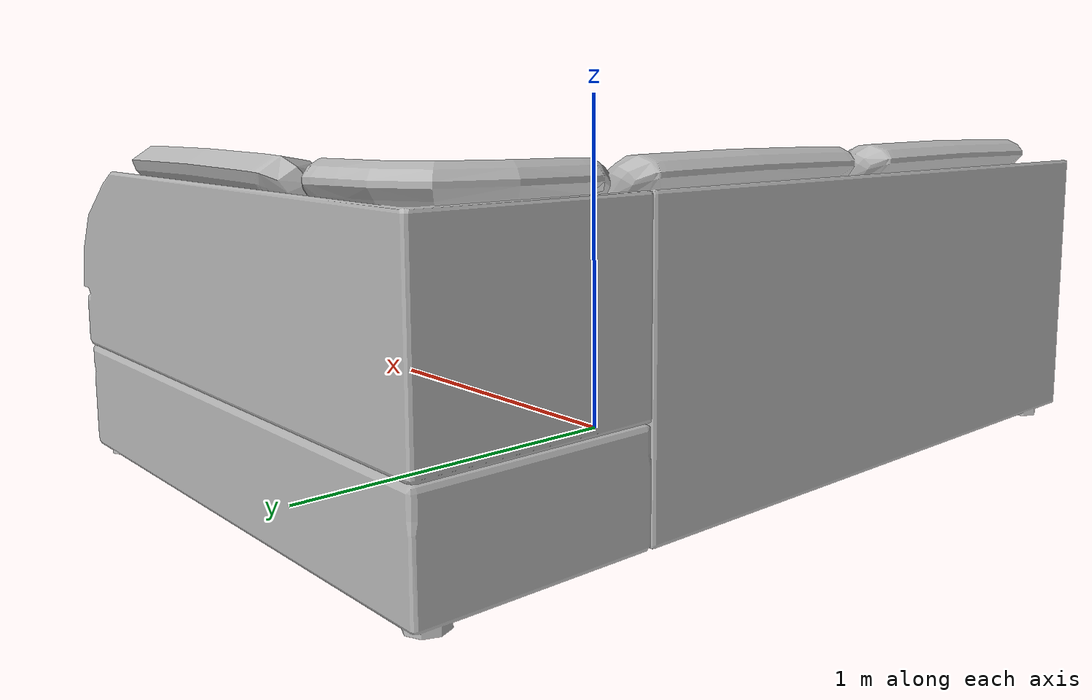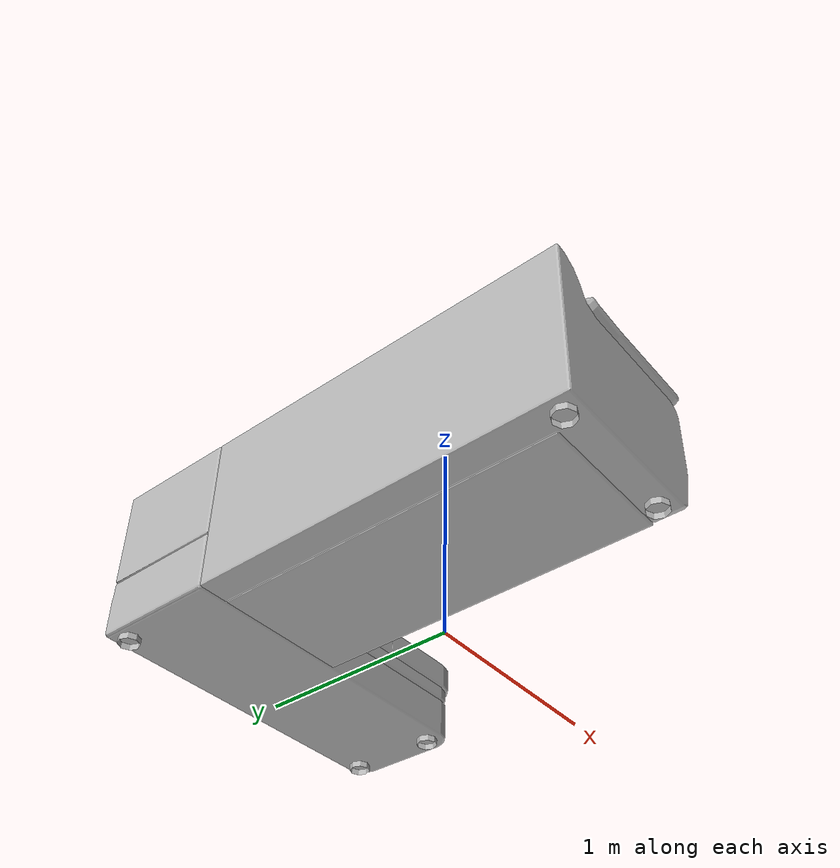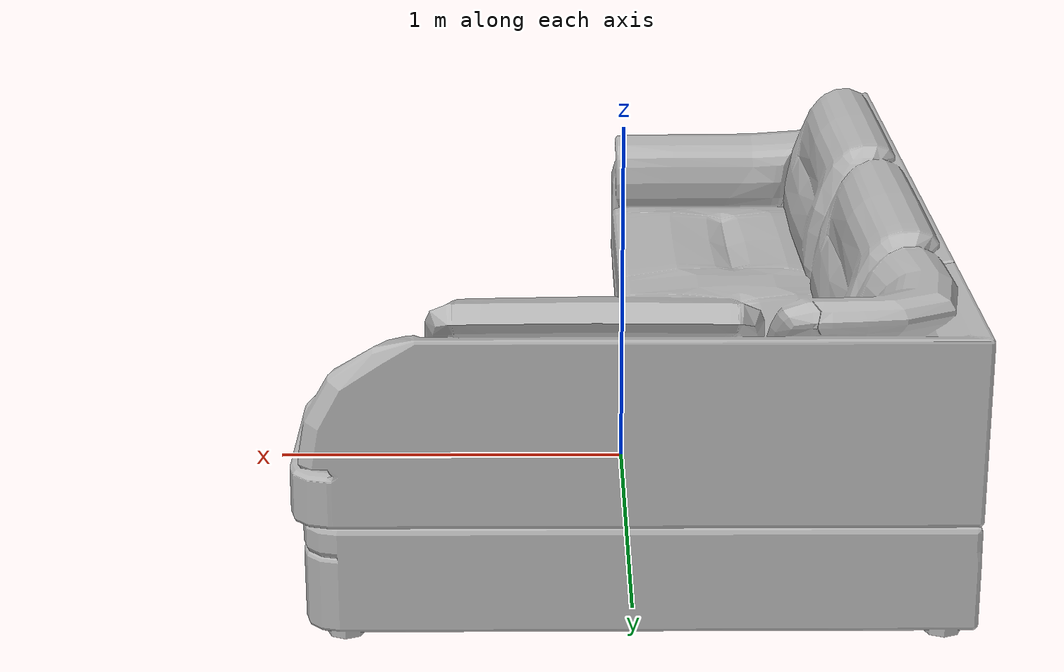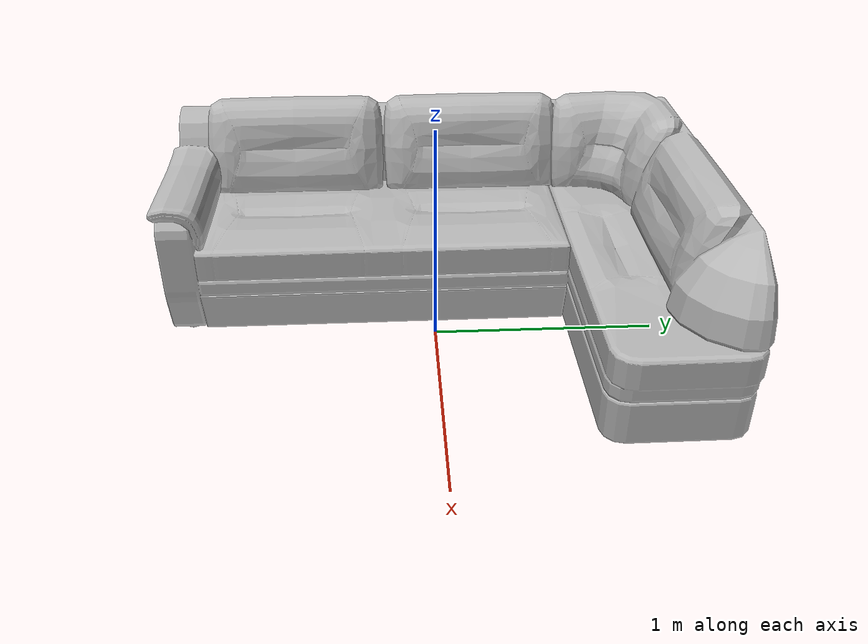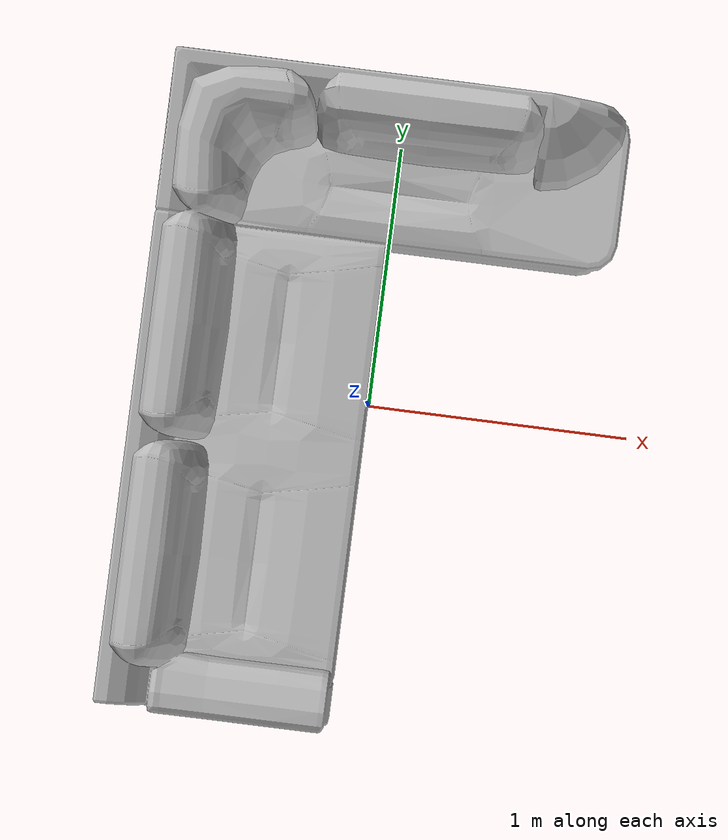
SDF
<?xml version='1.0'?>
<sdf version='1.4'>
  <model name='s__543'>
    <pose>0 0 0 0 0 0</pose>
    <static>true</static>
    <link name='link'>
      <collision name='collision'>
        <pose>0 0 0 0 0 0</pose>
        <geometry>
          <box>
            <size>1.7 2.42 2</size>
          </box>
        </geometry>
      </collision>
      <visual name='visual'>
        <pose>0 0 0 0 0 0</pose>
        <geometry>
          <mesh><uri>model://s__543/s__543.dae</uri></mesh>
        </geometry>
      </visual>
    </link>
  </model>
</sdf>
